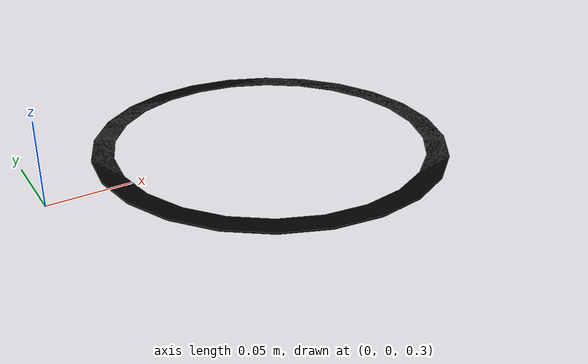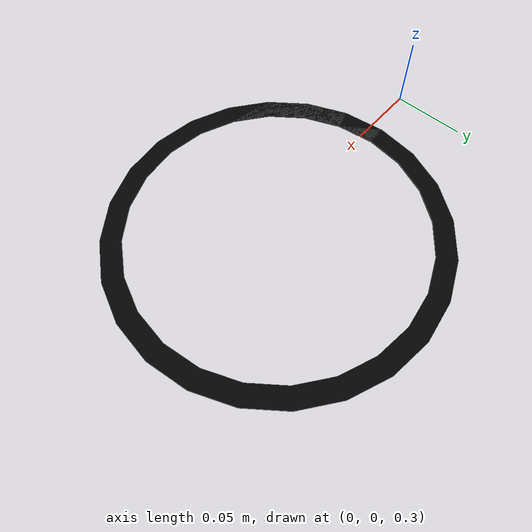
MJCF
<mujoco model="original-6">
  <default>
    <default class="visual">
      <geom group="2" type="mesh" contype="0" conaffinity="0"/>
    </default>
    <default class="collision">
      <geom group="3" type="mesh"/>
    </default>
  </default>
  <asset>
    <material name="material_0_0" specular="0.06666666666666667" shininess="0.03" rgba="0.13333333333333333 0.13333333333333333 0.13333333333333333 1"/>
    <material name="material_1_0" specular="0.06666666666666667" shininess="0.03" rgba="0 0 0 1"/>
    <mesh file="original-6_0.obj"/>
    <mesh file="original-6_1.obj"/>
  </asset>
  <worldbody>
    <body name="original-6">
      <geom mesh="original-6_0" material="material_1_0" class="visual"/>
      <geom mesh="original-6_1" material="material_0_0" class="visual"/>
      <geom mesh="original-6_0" class="collision"/>
      <geom mesh="original-6_1" class="collision"/>
    </body>
  </worldbody>
</mujoco>
